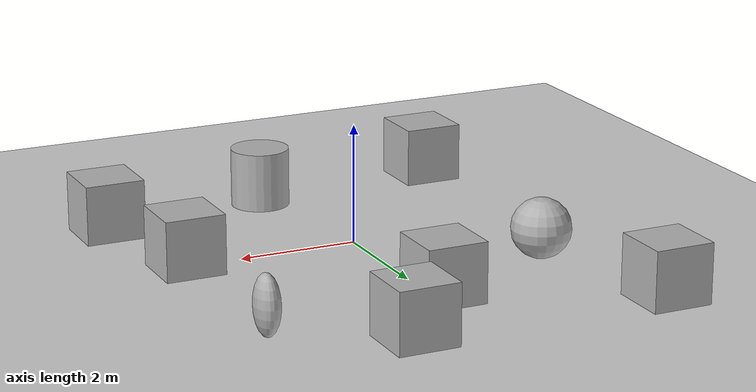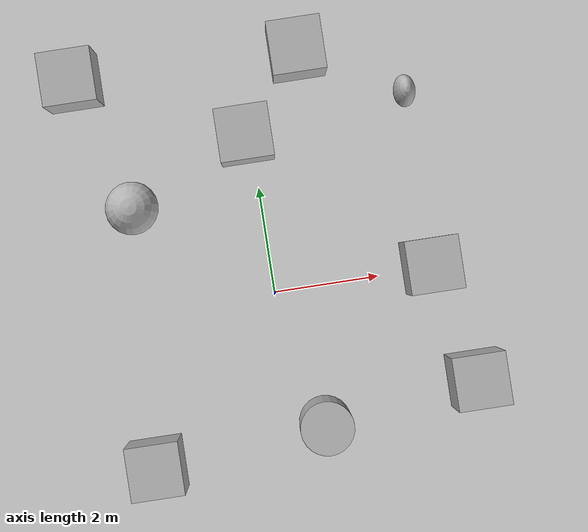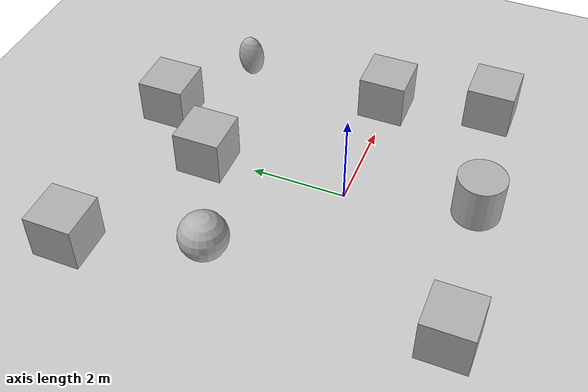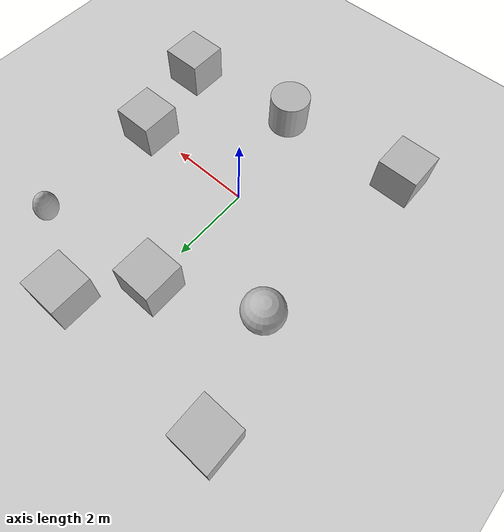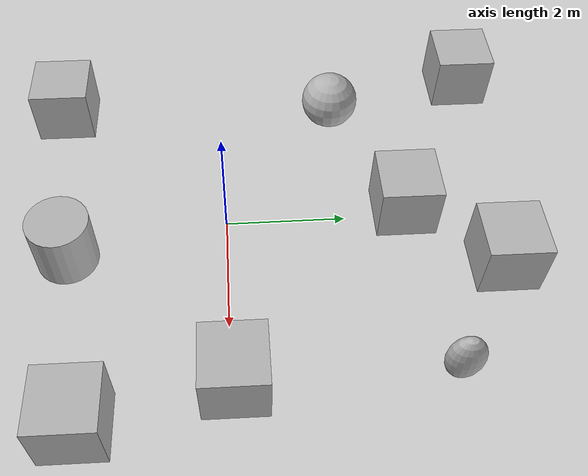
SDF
<sdf version='1.9'>
  <world name='traxter_world'>
    <physics name='1ms' type='ignored'>
      <max_step_size>0.01</max_step_size>
      <real_time_factor>1</real_time_factor>
    </physics>
    <plugin name='ignition::gazebo::systems::Physics' filename='ignition-gazebo-physics-system'/>
    <plugin name='ignition::gazebo::systems::UserCommands' filename='ignition-gazebo-user-commands-system'/>
    <plugin name='ignition::gazebo::systems::SceneBroadcaster' filename='ignition-gazebo-scene-broadcaster-system'/>
    <plugin filename="libignition-gazebo-imu-system.so"
        name="ignition::gazebo::systems::Imu">
    </plugin>
    <plugin name='ignition::gazebo::systems::Contact' filename='ignition-gazebo-contact-system'/>
    <plugin name='ignition::gazebo::systems::Sensors' filename='ignition-gazebo-sensors-system'>
      <render_engine>ogre2</render_engine>
    </plugin>
    <gravity>0 0 -9.8</gravity>
    <magnetic_field>6e-06 2.3e-05 -4.2e-05</magnetic_field>
    <atmosphere type='adiabatic'/>
    <scene>
      <ambient>0.4 0.4 0.4 1</ambient>
      <background>0.7 0.7 0.7 1</background>
      <shadows>true</shadows>
    </scene>
    <model name='ground_plane'>
      <static>true</static>
      <link name='link'>
        <collision name='collision'>
          <geometry>
            <plane>
              <normal>0 0 1</normal>
              <size>100 100</size>
            </plane>
          </geometry>
          <surface>
            <friction>
              <ode/>
            </friction>
            <bounce/>
            <contact/>
          </surface>
        </collision>
        <visual name='visual'>
          <geometry>
            <plane>
              <normal>0 0 1</normal>
              <size>100 100</size>
            </plane>
          </geometry>
          <material>
            <ambient>0.8 0.8 0.8 1</ambient>
            <diffuse>0.8 0.8 0.8 1</diffuse>
            <specular>0.8 0.8 0.8 1</specular>
          </material>
        </visual>
        <pose>0 0 0 0 -0 0</pose>
        <inertial>
          <pose>0 0 0 0 -0 0</pose>
          <mass>1</mass>
          <inertia>
            <ixx>1</ixx>
            <ixy>0</ixy>
            <ixz>0</ixz>
            <iyy>1</iyy>
            <iyz>0</iyz>
            <izz>1</izz>
          </inertia>
        </inertial>
        <enable_wind>false</enable_wind>
      </link>
      <pose>0 0 0 0 -0 0</pose>
      <self_collide>false</self_collide>
    </model>
    <model name='box'>
      <pose>-0.115406 3.00387 0.5 0 -0 0</pose>
      <link name='box_link'>
        <inertial>
          <inertia>
            <ixx>0.16666</ixx>
            <ixy>0</ixy>
            <ixz>0</ixz>
            <iyy>0.16666</iyy>
            <iyz>0</iyz>
            <izz>0.16666</izz>
          </inertia>
          <mass>1</mass>
          <pose>0 0 0 0 -0 0</pose>
        </inertial>
        <collision name='box_collision'>
          <geometry>
            <box>
              <size>1 1 1</size>
            </box>
          </geometry>
          <surface>
            <friction>
              <ode/>
            </friction>
            <bounce/>
            <contact/>
          </surface>
        </collision>
        <visual name='box_visual'>
          <geometry>
            <box>
              <size>1 1 1</size>
            </box>
          </geometry>
          <material>
            <ambient>0.3 0.3 0.3 1</ambient>
            <diffuse>0.7 0.7 0.7 1</diffuse>
            <specular>1 1 1 1</specular>
          </material>
        </visual>
        <pose>0 0 0 0 -0 0</pose>
        <enable_wind>false</enable_wind>
      </link>
      <static>false</static>
      <self_collide>false</self_collide>
    </model>
    <model name='box_0'>
      <pose>2.97769 0.070848 0.5 0 -0 0</pose>
      <link name='box_link'>
        <inertial>
          <inertia>
            <ixx>0.16666</ixx>
            <ixy>0</ixy>
            <ixz>0</ixz>
            <iyy>0.16666</iyy>
            <iyz>0</iyz>
            <izz>0.16666</izz>
          </inertia>
          <mass>1</mass>
          <pose>0 0 0 0 -0 0</pose>
        </inertial>
        <collision name='box_collision'>
          <geometry>
            <box>
              <size>1 1 1</size>
            </box>
          </geometry>
          <surface>
            <friction>
              <ode/>
            </friction>
            <bounce/>
            <contact/>
          </surface>
        </collision>
        <visual name='box_visual'>
          <geometry>
            <box>
              <size>1 1 1</size>
            </box>
          </geometry>
          <material>
            <ambient>0.3 0.3 0.3 1</ambient>
            <diffuse>0.7 0.7 0.7 1</diffuse>
            <specular>1 1 1 1</specular>
          </material>
        </visual>
        <pose>0 0 0 0 -0 0</pose>
        <enable_wind>false</enable_wind>
      </link>
      <static>false</static>
      <self_collide>false</self_collide>
    </model>
    <model name='cylinder'>
      <pose>0.583349 -2.59674 0.5 0 -0 0</pose>
      <link name='cylinder_link'>
        <inertial>
          <inertia>
            <ixx>0.14580000000000001</ixx>
            <ixy>0</ixy>
            <ixz>0</ixz>
            <iyy>0.14580000000000001</iyy>
            <iyz>0</iyz>
            <izz>0.125</izz>
          </inertia>
          <mass>1</mass>
          <pose>0 0 0 0 -0 0</pose>
        </inertial>
        <collision name='cylinder_collision'>
          <geometry>
            <cylinder>
              <radius>0.5</radius>
              <length>1</length>
            </cylinder>
          </geometry>
          <surface>
            <friction>
              <ode/>
            </friction>
            <bounce/>
            <contact/>
          </surface>
        </collision>
        <visual name='cylinder_visual'>
          <geometry>
            <cylinder>
              <radius>0.5</radius>
              <length>1</length>
            </cylinder>
          </geometry>
          <material>
            <ambient>0.3 0.3 0.3 1</ambient>
            <diffuse>0.7 0.7 0.7 1</diffuse>
            <specular>1 1 1 1</specular>
          </material>
        </visual>
        <pose>0 0 0 0 -0 0</pose>
        <enable_wind>false</enable_wind>
      </link>
      <static>false</static>
      <self_collide>false</self_collide>
    </model>
    <model name='ellipsoid'>
      <pose>2.96276 3.36249 0.5 0 -0 0</pose>
      <link name='ellipsoid_link'>
        <inertial>
          <inertia>
            <ixx>0.068000000000000005</ixx>
            <ixy>0</ixy>
            <ixz>0</ixz>
            <iyy>0.058000000000000003</iyy>
            <iyz>0</iyz>
            <izz>0.025999999999999999</izz>
          </inertia>
          <mass>1</mass>
          <pose>0 0 0 0 -0 0</pose>
        </inertial>
        <collision name='ellipsoid_collision'>
          <geometry>
            <ellipsoid>
              <radii>0.2 0.3 0.5</radii>
            </ellipsoid>
          </geometry>
          <surface>
            <friction>
              <ode/>
            </friction>
            <bounce/>
            <contact/>
          </surface>
        </collision>
        <visual name='ellipsoid_visual'>
          <geometry>
            <ellipsoid>
              <radii>0.2 0.3 0.5</radii>
            </ellipsoid>
          </geometry>
          <material>
            <ambient>0.3 0.3 0.3 1</ambient>
            <diffuse>0.7 0.7 0.7 1</diffuse>
            <specular>1 1 1 1</specular>
          </material>
        </visual>
        <pose>0 0 0 0 -0 0</pose>
        <enable_wind>false</enable_wind>
      </link>
      <static>false</static>
      <self_collide>false</self_collide>
    </model>
    <model name='box_2'>
      <pose>1.07518 4.43966 0.5 0 -0 0</pose>
      <link name='box_link'>
        <inertial>
          <inertia>
            <ixx>0.16666</ixx>
            <ixy>0</ixy>
            <ixz>0</ixz>
            <iyy>0.16666</iyy>
            <iyz>0</iyz>
            <izz>0.16666</izz>
          </inertia>
          <mass>1</mass>
          <pose>0 0 0 0 -0 0</pose>
        </inertial>
        <collision name='box_collision'>
          <geometry>
            <box>
              <size>1 1 1</size>
            </box>
          </geometry>
          <surface>
            <friction>
              <ode/>
            </friction>
            <bounce/>
            <contact/>
          </surface>
        </collision>
        <visual name='box_visual'>
          <geometry>
            <box>
              <size>1 1 1</size>
            </box>
          </geometry>
          <material>
            <ambient>0.3 0.3 0.3 1</ambient>
            <diffuse>0.7 0.7 0.7 1</diffuse>
            <specular>1 1 1 1</specular>
          </material>
        </visual>
        <pose>0 0 0 0 -0 0</pose>
        <enable_wind>false</enable_wind>
      </link>
      <static>false</static>
      <self_collide>false</self_collide>
    </model>
    <model name='box_3'>
      <pose>-2.67094 -2.9059 0.5 0 -0 0</pose>
      <link name='box_link'>
        <inertial>
          <inertia>
            <ixx>0.16666</ixx>
            <ixy>0</ixy>
            <ixz>0</ixz>
            <iyy>0.16666</iyy>
            <iyz>0</iyz>
            <izz>0.16666</izz>
          </inertia>
          <mass>1</mass>
          <pose>0 0 0 0 -0 0</pose>
        </inertial>
        <collision name='box_collision'>
          <geometry>
            <box>
              <size>1 1 1</size>
            </box>
          </geometry>
          <surface>
            <friction>
              <ode/>
            </friction>
            <bounce/>
            <contact/>
          </surface>
        </collision>
        <visual name='box_visual'>
          <geometry>
            <box>
              <size>1 1 1</size>
            </box>
          </geometry>
          <material>
            <ambient>0.3 0.3 0.3 1</ambient>
            <diffuse>0.7 0.7 0.7 1</diffuse>
            <specular>1 1 1 1</specular>
          </material>
        </visual>
        <pose>0 0 0 0 -0 0</pose>
        <enable_wind>false</enable_wind>
      </link>
      <static>false</static>
      <self_collide>false</self_collide>
    </model>
    <model name='sphere'>
      <pose>-2.4052 1.95968 0.5 0 -0 0</pose>
      <link name='sphere_link'>
        <inertial>
          <inertia>
            <ixx>0.10000000000000001</ixx>
            <ixy>0</ixy>
            <ixz>0</ixz>
            <iyy>0.10000000000000001</iyy>
            <iyz>0</iyz>
            <izz>0.10000000000000001</izz>
          </inertia>
          <mass>1</mass>
          <pose>0 0 0 0 -0 0</pose>
        </inertial>
        <collision name='sphere_collision'>
          <geometry>
            <sphere>
              <radius>0.5</radius>
            </sphere>
          </geometry>
          <surface>
            <friction>
              <ode/>
            </friction>
            <bounce/>
            <contact/>
          </surface>
        </collision>
        <visual name='sphere_visual'>
          <geometry>
            <sphere>
              <radius>0.5</radius>
            </sphere>
          </geometry>
          <material>
            <ambient>0.3 0.3 0.3 1</ambient>
            <diffuse>0.7 0.7 0.7 1</diffuse>
            <specular>1 1 1 1</specular>
          </material>
        </visual>
        <pose>0 0 0 0 -0 0</pose>
        <enable_wind>false</enable_wind>
      </link>
      <static>false</static>
      <self_collide>false</self_collide>
    </model>
    <model name='box_4'>
      <pose>-3.17951 4.50028 0.5 0 -0 0</pose>
      <link name='box_link'>
        <inertial>
          <inertia>
            <ixx>0.16666</ixx>
            <ixy>0</ixy>
            <ixz>0</ixz>
            <iyy>0.16666</iyy>
            <iyz>0</iyz>
            <izz>0.16666</izz>
          </inertia>
          <mass>1</mass>
          <pose>0 0 0 0 -0 0</pose>
        </inertial>
        <collision name='box_collision'>
          <geometry>
            <box>
              <size>1 1 1</size>
            </box>
          </geometry>
          <surface>
            <friction>
              <ode/>
            </friction>
            <bounce/>
            <contact/>
          </surface>
        </collision>
        <visual name='box_visual'>
          <geometry>
            <box>
              <size>1 1 1</size>
            </box>
          </geometry>
          <material>
            <ambient>0.3 0.3 0.3 1</ambient>
            <diffuse>0.7 0.7 0.7 1</diffuse>
            <specular>1 1 1 1</specular>
          </material>
        </visual>
        <pose>0 0 0 0 -0 0</pose>
        <enable_wind>false</enable_wind>
      </link>
      <static>false</static>
      <self_collide>false</self_collide>
    </model>
    <model name='box_5'>
      <pose>3.51302 -2.17253 0.5 0 -0 0</pose>
      <link name='box_link'>
        <inertial>
          <inertia>
            <ixx>0.16666</ixx>
            <ixy>0</ixy>
            <ixz>0</ixz>
            <iyy>0.16666</iyy>
            <iyz>0</iyz>
            <izz>0.16666</izz>
          </inertia>
          <mass>1</mass>
          <pose>0 0 0 0 -0 0</pose>
        </inertial>
        <collision name='box_collision'>
          <geometry>
            <box>
              <size>1 1 1</size>
            </box>
          </geometry>
          <surface>
            <friction>
              <ode/>
            </friction>
            <bounce/>
            <contact/>
          </surface>
        </collision>
        <visual name='box_visual'>
          <geometry>
            <box>
              <size>1 1 1</size>
            </box>
          </geometry>
          <material>
            <ambient>0.3 0.3 0.3 1</ambient>
            <diffuse>0.7 0.7 0.7 1</diffuse>
            <specular>1 1 1 1</specular>
          </material>
        </visual>
        <pose>0 0 0 0 -0 0</pose>
        <enable_wind>false</enable_wind>
      </link>
      <static>false</static>
      <self_collide>false</self_collide>
    </model>
    <light name='sun' type='directional'>
      <pose>0 0 10 0 -0 0</pose>
      <cast_shadows>true</cast_shadows>
      <intensity>1</intensity>
      <direction>-0.5 0.1 -0.9</direction>
      <diffuse>0.8 0.8 0.8 1</diffuse>
      <specular>0.2 0.2 0.2 1</specular>
      <attenuation>
        <range>1000</range>
        <linear>0.01</linear>
        <constant>0.90000000000000002</constant>
        <quadratic>0.001</quadratic>
      </attenuation>
      <spot>
        <inner_angle>0</inner_angle>
        <outer_angle>0</outer_angle>
        <falloff>0</falloff>
      </spot>
    </light>
  </world>
</sdf>
